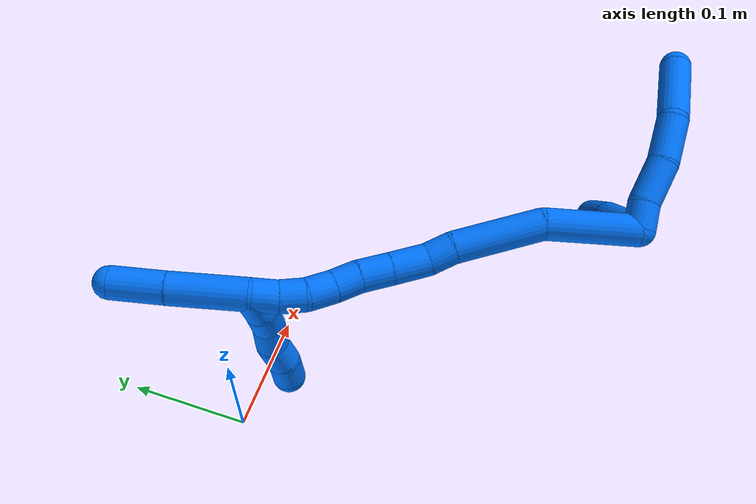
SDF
<sdf version="1.7">
 <world name="default">
  <model name="14">
   <static>0</static>
   <link name="14">
    <collision name="collision-cylinder-e_1_2_8">
     <pose>0.00092 -0.010572 -0.001893 1.748 0.08543 0.102061</pose>
     <geometry><cylinder><radius>0.0125</radius><length>0.02156</length></cylinder></geometry>
     <surface>
      <friction><ode><mu>1.16</mu><mu2>1.16</mu2><slip1>0</slip1><slip2>0</slip2></ode></friction>
      <contact><ode><kp>1e+06</kp><kd>1</kd><max_vel>0</max_vel><min_depth>0.001</min_depth></ode></contact>
     </surface>
    </collision>
    <visual name="visual-cylinder-e_1_2_8">
     <pose>0.00092 -0.010572 -0.001893 1.748 0.08543 0.102061</pose>
     <geometry><cylinder><radius>0.0125</radius><length>0.02156</length></cylinder></geometry>
     <material><ambient>0 0.462745 1 1</ambient></material>
    </visual>
    <collision name="collision-cylinder-e_2_8_9">
     <pose>0.007113 -0.037811 -0.004598 1.61943 0.306088 0.321093</pose>
     <geometry><cylinder><radius>0.0125</radius><length>0.034998</length></cylinder></geometry>
     <surface>
      <friction><ode><mu>1.16</mu><mu2>1.16</mu2><slip1>0</slip1><slip2>0</slip2></ode></friction>
      <contact><ode><kp>1e+06</kp><kd>1</kd><max_vel>0</max_vel><min_depth>0.001</min_depth></ode></contact>
     </surface>
    </collision>
    <visual name="visual-cylinder-e_2_8_9">
     <pose>0.007113 -0.037811 -0.004598 1.61943 0.306088 0.321093</pose>
     <geometry><cylinder><radius>0.0125</radius><length>0.034998</length></cylinder></geometry>
     <material><ambient>0 0.462745 1 1</ambient></material>
    </visual>
    <collision name="collision-cylinder-e_3_9_10">
     <pose>0.014074 -0.07288 -0.005762 1.59 0.091469 0.09324</pose>
     <geometry><cylinder><radius>0.0125</radius><length>0.036969</length></cylinder></geometry>
     <surface>
      <friction><ode><mu>1.16</mu><mu2>1.16</mu2><slip1>0</slip1><slip2>0</slip2></ode></friction>
      <contact><ode><kp>1e+06</kp><kd>1</kd><max_vel>0</max_vel><min_depth>0.001</min_depth></ode></contact>
     </surface>
    </collision>
    <visual name="visual-cylinder-e_3_9_10">
     <pose>0.014074 -0.07288 -0.005762 1.59 0.091469 0.09324</pose>
     <geometry><cylinder><radius>0.0125</radius><length>0.036969</length></cylinder></geometry>
     <material><ambient>0 0.462745 1 1</ambient></material>
    </visual>
    <collision name="collision-cylinder-e_4_10_6">
     <pose>0.012307 -0.118523 0.000475 1.33338 -0.12267 -0.096573</pose>
     <geometry><cylinder><radius>0.0125</radius><length>0.056473</length></cylinder></geometry>
     <surface>
      <friction><ode><mu>1.16</mu><mu2>1.16</mu2><slip1>0</slip1><slip2>0</slip2></ode></friction>
      <contact><ode><kp>1e+06</kp><kd>1</kd><max_vel>0</max_vel><min_depth>0.001</min_depth></ode></contact>
     </surface>
    </collision>
    <visual name="visual-cylinder-e_4_10_6">
     <pose>0.012307 -0.118523 0.000475 1.33338 -0.12267 -0.096573</pose>
     <geometry><cylinder><radius>0.0125</radius><length>0.056473</length></cylinder></geometry>
     <material><ambient>0 0.462745 1 1</ambient></material>
    </visual>
    <collision name="collision-cylinder-e_1_2_11">
     <pose>-0.018683 -0.013705 0.019795 0.605567 -0.659923 -0.213164</pose>
     <geometry><cylinder><radius>0.0125</radius><length>0.06095</length></cylinder></geometry>
     <surface>
      <friction><ode><mu>1.16</mu><mu2>1.16</mu2><slip1>0</slip1><slip2>0</slip2></ode></friction>
      <contact><ode><kp>1e+06</kp><kd>1</kd><max_vel>0</max_vel><min_depth>0.001</min_depth></ode></contact>
     </surface>
    </collision>
    <visual name="visual-cylinder-e_1_2_11">
     <pose>-0.018683 -0.013705 0.019795 0.605567 -0.659923 -0.213164</pose>
     <geometry><cylinder><radius>0.0125</radius><length>0.06095</length></cylinder></geometry>
     <material><ambient>0 0.462745 1 1</ambient></material>
    </visual>
    <collision name="collision-cylinder-e_2_11_5">
     <pose>-0.048805 -0.034432 0.053769 0.459828 -0.625998 -0.151208</pose>
     <geometry><cylinder><radius>0.0125</radius><length>0.03905</length></cylinder></geometry>
     <surface>
      <friction><ode><mu>1.16</mu><mu2>1.16</mu2><slip1>0</slip1><slip2>0</slip2></ode></friction>
      <contact><ode><kp>1e+06</kp><kd>1</kd><max_vel>0</max_vel><min_depth>0.001</min_depth></ode></contact>
     </surface>
    </collision>
    <visual name="visual-cylinder-e_2_11_5">
     <pose>-0.048805 -0.034432 0.053769 0.459828 -0.625998 -0.151208</pose>
     <geometry><cylinder><radius>0.0125</radius><length>0.03905</length></cylinder></geometry>
     <material><ambient>0 0.462745 1 1</ambient></material>
    </visual>
    <collision name="collision-cylinder-e_1_2_12">
     <pose>-0.031399 0.006064 -0.018052 -2.81753 -1.02562 2.57648</pose>
     <geometry><cylinder><radius>0.0125</radius><length>0.073445</length></cylinder></geometry>
     <surface>
      <friction><ode><mu>1.16</mu><mu2>1.16</mu2><slip1>0</slip1><slip2>0</slip2></ode></friction>
      <contact><ode><kp>1e+06</kp><kd>1</kd><max_vel>0</max_vel><min_depth>0.001</min_depth></ode></contact>
     </surface>
    </collision>
    <visual name="visual-cylinder-e_1_2_12">
     <pose>-0.031399 0.006064 -0.018052 -2.81753 -1.02562 2.57648</pose>
     <geometry><cylinder><radius>0.0125</radius><length>0.073445</length></cylinder></geometry>
     <material><ambient>0 0.462745 1 1</ambient></material>
    </visual>
    <collision name="collision-cylinder-e_2_12_13">
     <pose>-0.091172 0.028378 -0.049365 -2.25522 -0.934234 1.63138</pose>
     <geometry><cylinder><radius>0.0125</radius><length>0.07057</length></cylinder></geometry>
     <surface>
      <friction><ode><mu>1.16</mu><mu2>1.16</mu2><slip1>0</slip1><slip2>0</slip2></ode></friction>
      <contact><ode><kp>1e+06</kp><kd>1</kd><max_vel>0</max_vel><min_depth>0.001</min_depth></ode></contact>
     </surface>
    </collision>
    <visual name="visual-cylinder-e_2_12_13">
     <pose>-0.091172 0.028378 -0.049365 -2.25522 -0.934234 1.63138</pose>
     <geometry><cylinder><radius>0.0125</radius><length>0.07057</length></cylinder></geometry>
     <material><ambient>0 0.462745 1 1</ambient></material>
    </visual>
    <collision name="collision-cylinder-e_3_13_14">
     <pose>-0.127511 0.050861 -0.065359 -1.98419 -0.863748 1.22878</pose>
     <geometry><cylinder><radius>0.0125</radius><length>0.020952</length></cylinder></geometry>
     <surface>
      <friction><ode><mu>1.16</mu><mu2>1.16</mu2><slip1>0</slip1><slip2>0</slip2></ode></friction>
      <contact><ode><kp>1e+06</kp><kd>1</kd><max_vel>0</max_vel><min_depth>0.001</min_depth></ode></contact>
     </surface>
    </collision>
    <visual name="visual-cylinder-e_3_13_14">
     <pose>-0.127511 0.050861 -0.065359 -1.98419 -0.863748 1.22878</pose>
     <geometry><cylinder><radius>0.0125</radius><length>0.020952</length></cylinder></geometry>
     <material><ambient>0 0.462745 1 1</ambient></material>
    </visual>
    <collision name="collision-cylinder-e_4_14_15">
     <pose>-0.146058 0.064173 -0.075257 -2.36212 -0.810059 1.61364</pose>
     <geometry><cylinder><radius>0.0125</radius><length>0.029219</length></cylinder></geometry>
     <surface>
      <friction><ode><mu>1.16</mu><mu2>1.16</mu2><slip1>0</slip1><slip2>0</slip2></ode></friction>
      <contact><ode><kp>1e+06</kp><kd>1</kd><max_vel>0</max_vel><min_depth>0.001</min_depth></ode></contact>
     </surface>
    </collision>
    <visual name="visual-cylinder-e_4_14_15">
     <pose>-0.146058 0.064173 -0.075257 -2.36212 -0.810059 1.61364</pose>
     <geometry><cylinder><radius>0.0125</radius><length>0.029219</length></cylinder></geometry>
     <material><ambient>0 0.462745 1 1</ambient></material>
    </visual>
    <collision name="collision-cylinder-e_5_15_16">
     <pose>-0.165451 0.077097 -0.088602 -2.38416 -0.803074 1.63565</pose>
     <geometry><cylinder><radius>0.0125</radius><length>0.024493</length></cylinder></geometry>
     <surface>
      <friction><ode><mu>1.16</mu><mu2>1.16</mu2><slip1>0</slip1><slip2>0</slip2></ode></friction>
      <contact><ode><kp>1e+06</kp><kd>1</kd><max_vel>0</max_vel><min_depth>0.001</min_depth></ode></contact>
     </surface>
    </collision>
    <visual name="visual-cylinder-e_5_15_16">
     <pose>-0.165451 0.077097 -0.088602 -2.38416 -0.803074 1.63565</pose>
     <geometry><cylinder><radius>0.0125</radius><length>0.024493</length></cylinder></geometry>
     <material><ambient>0 0.462745 1 1</ambient></material>
    </visual>
    <collision name="collision-cylinder-e_6_16_17">
     <pose>-0.180831 0.088937 -0.099375 -2.22449 -0.715754 1.29667</pose>
     <geometry><cylinder><radius>0.0125</radius><length>0.020021</length></cylinder></geometry>
     <surface>
      <friction><ode><mu>1.16</mu><mu2>1.16</mu2><slip1>0</slip1><slip2>0</slip2></ode></friction>
      <contact><ode><kp>1e+06</kp><kd>1</kd><max_vel>0</max_vel><min_depth>0.001</min_depth></ode></contact>
     </surface>
    </collision>
    <visual name="visual-cylinder-e_6_16_17">
     <pose>-0.180831 0.088937 -0.099375 -2.22449 -0.715754 1.29667</pose>
     <geometry><cylinder><radius>0.0125</radius><length>0.020021</length></cylinder></geometry>
     <material><ambient>0 0.462745 1 1</ambient></material>
    </visual>
    <collision name="collision-cylinder-e_7_17_18">
     <pose>-0.194261 0.100573 -0.10966 -2.36078 -0.708179 1.46373</pose>
     <geometry><cylinder><radius>0.0125</radius><length>0.021097</length></cylinder></geometry>
     <surface>
      <friction><ode><mu>1.16</mu><mu2>1.16</mu2><slip1>0</slip1><slip2>0</slip2></ode></friction>
      <contact><ode><kp>1e+06</kp><kd>1</kd><max_vel>0</max_vel><min_depth>0.001</min_depth></ode></contact>
     </surface>
    </collision>
    <visual name="visual-cylinder-e_7_17_18">
     <pose>-0.194261 0.100573 -0.10966 -2.36078 -0.708179 1.46373</pose>
     <geometry><cylinder><radius>0.0125</radius><length>0.021097</length></cylinder></geometry>
     <material><ambient>0 0.462745 1 1</ambient></material>
    </visual>
    <collision name="collision-cylinder-e_8_18_19">
     <pose>-0.209244 0.109375 -0.120297 -2.57258 -0.94494 2.10213</pose>
     <geometry><cylinder><radius>0.0125</radius><length>0.020041</length></cylinder></geometry>
     <surface>
      <friction><ode><mu>1.16</mu><mu2>1.16</mu2><slip1>0</slip1><slip2>0</slip2></ode></friction>
      <contact><ode><kp>1e+06</kp><kd>1</kd><max_vel>0</max_vel><min_depth>0.001</min_depth></ode></contact>
     </surface>
    </collision>
    <visual name="visual-cylinder-e_8_18_19">
     <pose>-0.209244 0.109375 -0.120297 -2.57258 -0.94494 2.10213</pose>
     <geometry><cylinder><radius>0.0125</radius><length>0.020041</length></cylinder></geometry>
     <material><ambient>0 0.462745 1 1</ambient></material>
    </visual>
    <collision name="collision-cylinder-e_9_19_1">
     <pose>-0.22504 0.114428 -0.131498 -2.84812 -0.865428 2.52223</pose>
     <geometry><cylinder><radius>0.0125</radius><length>0.020162</length></cylinder></geometry>
     <surface>
      <friction><ode><mu>1.16</mu><mu2>1.16</mu2><slip1>0</slip1><slip2>0</slip2></ode></friction>
      <contact><ode><kp>1e+06</kp><kd>1</kd><max_vel>0</max_vel><min_depth>0.001</min_depth></ode></contact>
     </surface>
    </collision>
    <visual name="visual-cylinder-e_9_19_1">
     <pose>-0.22504 0.114428 -0.131498 -2.84812 -0.865428 2.52223</pose>
     <geometry><cylinder><radius>0.0125</radius><length>0.020162</length></cylinder></geometry>
     <material><ambient>0 0.462745 1 1</ambient></material>
    </visual>
    <collision name="collision-cylinder-e_1_1_20">
     <pose>-0.259052 0.120123 -0.150305 -2.8473 -1.10877 2.67166</pose>
     <geometry><cylinder><radius>0.0125</radius><length>0.058842</length></cylinder></geometry>
     <surface>
      <friction><ode><mu>1.16</mu><mu2>1.16</mu2><slip1>0</slip1><slip2>0</slip2></ode></friction>
      <contact><ode><kp>1e+06</kp><kd>1</kd><max_vel>0</max_vel><min_depth>0.001</min_depth></ode></contact>
     </surface>
    </collision>
    <visual name="visual-cylinder-e_1_1_20">
     <pose>-0.259052 0.120123 -0.150305 -2.8473 -1.10877 2.67166</pose>
     <geometry><cylinder><radius>0.0125</radius><length>0.058842</length></cylinder></geometry>
     <material><ambient>0 0.462745 1 1</ambient></material>
    </visual>
    <collision name="collision-cylinder-e_2_20_4">
     <pose>-0.304154 0.12596 -0.171053 -2.8985 -1.14791 2.76815</pose>
     <geometry><cylinder><radius>0.0125</radius><length>0.041158</length></cylinder></geometry>
     <surface>
      <friction><ode><mu>1.16</mu><mu2>1.16</mu2><slip1>0</slip1><slip2>0</slip2></ode></friction>
      <contact><ode><kp>1e+06</kp><kd>1</kd><max_vel>0</max_vel><min_depth>0.001</min_depth></ode></contact>
     </surface>
    </collision>
    <visual name="visual-cylinder-e_2_20_4">
     <pose>-0.304154 0.12596 -0.171053 -2.8985 -1.14791 2.76815</pose>
     <geometry><cylinder><radius>0.0125</radius><length>0.041158</length></cylinder></geometry>
     <material><ambient>0 0.462745 1 1</ambient></material>
    </visual>
    <collision name="collision-cylinder-e_1_1_21">
     <pose>-0.232637 0.119262 -0.128197 -0.29871 0.007839 -0.00118</pose>
     <geometry><cylinder><radius>0.0125</radius><length>0.02</length></cylinder></geometry>
     <surface>
      <friction><ode><mu>1.16</mu><mu2>1.16</mu2><slip1>0</slip1><slip2>0</slip2></ode></friction>
      <contact><ode><kp>1e+06</kp><kd>1</kd><max_vel>0</max_vel><min_depth>0.001</min_depth></ode></contact>
     </surface>
    </collision>
    <visual name="visual-cylinder-e_1_1_21">
     <pose>-0.232637 0.119262 -0.128197 -0.29871 0.007839 -0.00118</pose>
     <geometry><cylinder><radius>0.0125</radius><length>0.02</length></cylinder></geometry>
     <material><ambient>0 0.462745 1 1</ambient></material>
    </visual>
    <collision name="collision-cylinder-e_2_21_22">
     <pose>-0.234656 0.124308 -0.109092 -0.216837 -0.211215 0.023075</pose>
     <geometry><cylinder><radius>0.0125</radius><length>0.02</length></cylinder></geometry>
     <surface>
      <friction><ode><mu>1.16</mu><mu2>1.16</mu2><slip1>0</slip1><slip2>0</slip2></ode></friction>
      <contact><ode><kp>1e+06</kp><kd>1</kd><max_vel>0</max_vel><min_depth>0.001</min_depth></ode></contact>
     </surface>
    </collision>
    <visual name="visual-cylinder-e_2_21_22">
     <pose>-0.234656 0.124308 -0.109092 -0.216837 -0.211215 0.023075</pose>
     <geometry><cylinder><radius>0.0125</radius><length>0.02</length></cylinder></geometry>
     <material><ambient>0 0.462745 1 1</ambient></material>
    </visual>
    <collision name="collision-cylinder-e_3_22_23">
     <pose>-0.238552 0.131388 -0.091057 -0.530346 -0.18101 0.049281</pose>
     <geometry><cylinder><radius>0.0125</radius><length>0.02</length></cylinder></geometry>
     <surface>
      <friction><ode><mu>1.16</mu><mu2>1.16</mu2><slip1>0</slip1><slip2>0</slip2></ode></friction>
      <contact><ode><kp>1e+06</kp><kd>1</kd><max_vel>0</max_vel><min_depth>0.001</min_depth></ode></contact>
     </surface>
    </collision>
    <visual name="visual-cylinder-e_3_22_23">
     <pose>-0.238552 0.131388 -0.091057 -0.530346 -0.18101 0.049281</pose>
     <geometry><cylinder><radius>0.0125</radius><length>0.02</length></cylinder></geometry>
     <material><ambient>0 0.462745 1 1</ambient></material>
    </visual>
    <collision name="collision-cylinder-e_4_23_24">
     <pose>-0.239755 0.139724 -0.073173 -0.343419 0.059745 -0.010364</pose>
     <geometry><cylinder><radius>0.0125</radius><length>0.02</length></cylinder></geometry>
     <surface>
      <friction><ode><mu>1.16</mu><mu2>1.16</mu2><slip1>0</slip1><slip2>0</slip2></ode></friction>
      <contact><ode><kp>1e+06</kp><kd>1</kd><max_vel>0</max_vel><min_depth>0.001</min_depth></ode></contact>
     </surface>
    </collision>
    <visual name="visual-cylinder-e_4_23_24">
     <pose>-0.239755 0.139724 -0.073173 -0.343419 0.059745 -0.010364</pose>
     <geometry><cylinder><radius>0.0125</radius><length>0.02</length></cylinder></geometry>
     <material><ambient>0 0.462745 1 1</ambient></material>
    </visual>
    <collision name="collision-cylinder-e_5_24_3">
     <pose>-0.241105 0.146716 -0.054662 -0.379202 -0.195908 0.037712</pose>
     <geometry><cylinder><radius>0.0125</radius><length>0.02</length></cylinder></geometry>
     <surface>
      <friction><ode><mu>1.16</mu><mu2>1.16</mu2><slip1>0</slip1><slip2>0</slip2></ode></friction>
      <contact><ode><kp>1e+06</kp><kd>1</kd><max_vel>0</max_vel><min_depth>0.001</min_depth></ode></contact>
     </surface>
    </collision>
    <visual name="visual-cylinder-e_5_24_3">
     <pose>-0.241105 0.146716 -0.054662 -0.379202 -0.195908 0.037712</pose>
     <geometry><cylinder><radius>0.0125</radius><length>0.02</length></cylinder></geometry>
     <material><ambient>0 0.462745 1 1</ambient></material>
    </visual>
    <collision name="collision-sphere-3">
     <pose>-0.243051 0.150347 -0.04555 0 -0 0</pose>
     <geometry><sphere><radius>0.0125</radius></sphere></geometry>
     <surface>
      <friction><ode><mu>1.16</mu><mu2>1.16</mu2><slip1>0</slip1><slip2>0</slip2></ode></friction>
      <contact><ode><kp>1e+06</kp><kd>1</kd><max_vel>0</max_vel><min_depth>0.001</min_depth></ode></contact>
     </surface>
    </collision>
    <visual name="visual-sphere-3">
     <pose>-0.243051 0.150347 -0.04555 0 -0 0</pose>
     <geometry><sphere><radius>0.0125</radius></sphere></geometry>
     <material><ambient>0 0.462745 1 1</ambient></material>
    </visual>
    <collision name="collision-sphere-24">
     <pose>-0.239158 0.143085 -0.063773 0 -0 0</pose>
     <geometry><sphere><radius>0.0125</radius></sphere></geometry>
     <surface>
      <friction><ode><mu>1.16</mu><mu2>1.16</mu2><slip1>0</slip1><slip2>0</slip2></ode></friction>
      <contact><ode><kp>1e+06</kp><kd>1</kd><max_vel>0</max_vel><min_depth>0.001</min_depth></ode></contact>
     </surface>
    </collision>
    <visual name="visual-sphere-24">
     <pose>-0.239158 0.143085 -0.063773 0 -0 0</pose>
     <geometry><sphere><radius>0.0125</radius></sphere></geometry>
     <material><ambient>0 0.462745 1 1</ambient></material>
    </visual>
    <collision name="collision-sphere-23">
     <pose>-0.240352 0.136363 -0.082572 0 -0 0</pose>
     <geometry><sphere><radius>0.0125</radius></sphere></geometry>
     <surface>
      <friction><ode><mu>1.16</mu><mu2>1.16</mu2><slip1>0</slip1><slip2>0</slip2></ode></friction>
      <contact><ode><kp>1e+06</kp><kd>1</kd><max_vel>0</max_vel><min_depth>0.001</min_depth></ode></contact>
     </surface>
    </collision>
    <visual name="visual-sphere-23">
     <pose>-0.240352 0.136363 -0.082572 0 -0 0</pose>
     <geometry><sphere><radius>0.0125</radius></sphere></geometry>
     <material><ambient>0 0.462745 1 1</ambient></material>
    </visual>
    <collision name="collision-sphere-22">
     <pose>-0.236752 0.126412 -0.099543 0 -0 0</pose>
     <geometry><sphere><radius>0.0125</radius></sphere></geometry>
     <surface>
      <friction><ode><mu>1.16</mu><mu2>1.16</mu2><slip1>0</slip1><slip2>0</slip2></ode></friction>
      <contact><ode><kp>1e+06</kp><kd>1</kd><max_vel>0</max_vel><min_depth>0.001</min_depth></ode></contact>
     </surface>
    </collision>
    <visual name="visual-sphere-22">
     <pose>-0.236752 0.126412 -0.099543 0 -0 0</pose>
     <geometry><sphere><radius>0.0125</radius></sphere></geometry>
     <material><ambient>0 0.462745 1 1</ambient></material>
    </visual>
    <collision name="collision-sphere-21">
     <pose>-0.232559 0.122205 -0.11864 0 -0 0</pose>
     <geometry><sphere><radius>0.0125</radius></sphere></geometry>
     <surface>
      <friction><ode><mu>1.16</mu><mu2>1.16</mu2><slip1>0</slip1><slip2>0</slip2></ode></friction>
      <contact><ode><kp>1e+06</kp><kd>1</kd><max_vel>0</max_vel><min_depth>0.001</min_depth></ode></contact>
     </surface>
    </collision>
    <visual name="visual-sphere-21">
     <pose>-0.232559 0.122205 -0.11864 0 -0 0</pose>
     <geometry><sphere><radius>0.0125</radius></sphere></geometry>
     <material><ambient>0 0.462745 1 1</ambient></material>
    </visual>
    <collision name="collision-sphere-4">
     <pose>-0.322921 0.127993 -0.179251 0 -0 0</pose>
     <geometry><sphere><radius>0.0125</radius></sphere></geometry>
     <surface>
      <friction><ode><mu>1.16</mu><mu2>1.16</mu2><slip1>0</slip1><slip2>0</slip2></ode></friction>
      <contact><ode><kp>1e+06</kp><kd>1</kd><max_vel>0</max_vel><min_depth>0.001</min_depth></ode></contact>
     </surface>
    </collision>
    <visual name="visual-sphere-4">
     <pose>-0.322921 0.127993 -0.179251 0 -0 0</pose>
     <geometry><sphere><radius>0.0125</radius></sphere></geometry>
     <material><ambient>0 0.462745 1 1</ambient></material>
    </visual>
    <collision name="collision-sphere-20">
     <pose>-0.285388 0.123927 -0.162856 0 -0 0</pose>
     <geometry><sphere><radius>0.0125</radius></sphere></geometry>
     <surface>
      <friction><ode><mu>1.16</mu><mu2>1.16</mu2><slip1>0</slip1><slip2>0</slip2></ode></friction>
      <contact><ode><kp>1e+06</kp><kd>1</kd><max_vel>0</max_vel><min_depth>0.001</min_depth></ode></contact>
     </surface>
    </collision>
    <visual name="visual-sphere-20">
     <pose>-0.285388 0.123927 -0.162856 0 -0 0</pose>
     <geometry><sphere><radius>0.0125</radius></sphere></geometry>
     <material><ambient>0 0.462745 1 1</ambient></material>
    </visual>
    <collision name="collision-sphere-11">
     <pose>-0.037365 -0.02741 0.03959 0 -0 0</pose>
     <geometry><sphere><radius>0.0125</radius></sphere></geometry>
     <surface>
      <friction><ode><mu>1.16</mu><mu2>1.16</mu2><slip1>0</slip1><slip2>0</slip2></ode></friction>
      <contact><ode><kp>1e+06</kp><kd>1</kd><max_vel>0</max_vel><min_depth>0.001</min_depth></ode></contact>
     </surface>
    </collision>
    <visual name="visual-sphere-11">
     <pose>-0.037365 -0.02741 0.03959 0 -0 0</pose>
     <geometry><sphere><radius>0.0125</radius></sphere></geometry>
     <material><ambient>0 0.462745 1 1</ambient></material>
    </visual>
    <collision name="collision-sphere-6">
     <pose>0.008852 -0.145761 0.007066 0 -0 0</pose>
     <geometry><sphere><radius>0.0125</radius></sphere></geometry>
     <surface>
      <friction><ode><mu>1.16</mu><mu2>1.16</mu2><slip1>0</slip1><slip2>0</slip2></ode></friction>
      <contact><ode><kp>1e+06</kp><kd>1</kd><max_vel>0</max_vel><min_depth>0.001</min_depth></ode></contact>
     </surface>
    </collision>
    <visual name="visual-sphere-6">
     <pose>0.008852 -0.145761 0.007066 0 -0 0</pose>
     <geometry><sphere><radius>0.0125</radius></sphere></geometry>
     <material><ambient>0 0.462745 1 1</ambient></material>
    </visual>
    <collision name="collision-sphere-10">
     <pose>0.015762 -0.091284 -0.006116 0 -0 0</pose>
     <geometry><sphere><radius>0.0125</radius></sphere></geometry>
     <surface>
      <friction><ode><mu>1.16</mu><mu2>1.16</mu2><slip1>0</slip1><slip2>0</slip2></ode></friction>
      <contact><ode><kp>1e+06</kp><kd>1</kd><max_vel>0</max_vel><min_depth>0.001</min_depth></ode></contact>
     </surface>
    </collision>
    <visual name="visual-sphere-10">
     <pose>0.015762 -0.091284 -0.006116 0 -0 0</pose>
     <geometry><sphere><radius>0.0125</radius></sphere></geometry>
     <material><ambient>0 0.462745 1 1</ambient></material>
    </visual>
    <collision name="collision-sphere-9">
     <pose>0.012386 -0.054477 -0.005409 0 -0 0</pose>
     <geometry><sphere><radius>0.0125</radius></sphere></geometry>
     <surface>
      <friction><ode><mu>1.16</mu><mu2>1.16</mu2><slip1>0</slip1><slip2>0</slip2></ode></friction>
      <contact><ode><kp>1e+06</kp><kd>1</kd><max_vel>0</max_vel><min_depth>0.001</min_depth></ode></contact>
     </surface>
    </collision>
    <visual name="visual-sphere-9">
     <pose>0.012386 -0.054477 -0.005409 0 -0 0</pose>
     <geometry><sphere><radius>0.0125</radius></sphere></geometry>
     <material><ambient>0 0.462745 1 1</ambient></material>
    </visual>
    <collision name="collision-sphere-2">
     <geometry><sphere><radius>0.0125</radius></sphere></geometry>
     <surface>
      <friction><ode><mu>1.16</mu><mu2>1.16</mu2><slip1>0</slip1><slip2>0</slip2></ode></friction>
      <contact><ode><kp>1e+06</kp><kd>1</kd><max_vel>0</max_vel><min_depth>0.001</min_depth></ode></contact>
     </surface>
    </collision>
    <visual name="visual-sphere-2">
     <geometry><sphere><radius>0.0125</radius></sphere></geometry>
     <material><ambient>0 0.462745 1 1</ambient></material>
    </visual>
    <collision name="collision-sphere-19">
     <pose>-0.217365 0.112538 -0.125242 0 -0 0</pose>
     <geometry><sphere><radius>0.0125</radius></sphere></geometry>
     <surface>
      <friction><ode><mu>1.16</mu><mu2>1.16</mu2><slip1>0</slip1><slip2>0</slip2></ode></friction>
      <contact><ode><kp>1e+06</kp><kd>1</kd><max_vel>0</max_vel><min_depth>0.001</min_depth></ode></contact>
     </surface>
    </collision>
    <visual name="visual-sphere-19">
     <pose>-0.217365 0.112538 -0.125242 0 -0 0</pose>
     <geometry><sphere><radius>0.0125</radius></sphere></geometry>
     <material><ambient>0 0.462745 1 1</ambient></material>
    </visual>
    <collision name="collision-sphere-8">
     <pose>0.00184 -0.021145 -0.003787 0 -0 0</pose>
     <geometry><sphere><radius>0.0125</radius></sphere></geometry>
     <surface>
      <friction><ode><mu>1.16</mu><mu2>1.16</mu2><slip1>0</slip1><slip2>0</slip2></ode></friction>
      <contact><ode><kp>1e+06</kp><kd>1</kd><max_vel>0</max_vel><min_depth>0.001</min_depth></ode></contact>
     </surface>
    </collision>
    <visual name="visual-sphere-8">
     <pose>0.00184 -0.021145 -0.003787 0 -0 0</pose>
     <geometry><sphere><radius>0.0125</radius></sphere></geometry>
     <material><ambient>0 0.462745 1 1</ambient></material>
    </visual>
    <collision name="collision-sphere-5">
     <pose>-0.060245 -0.041454 0.067949 0 -0 0</pose>
     <geometry><sphere><radius>0.0125</radius></sphere></geometry>
     <surface>
      <friction><ode><mu>1.16</mu><mu2>1.16</mu2><slip1>0</slip1><slip2>0</slip2></ode></friction>
      <contact><ode><kp>1e+06</kp><kd>1</kd><max_vel>0</max_vel><min_depth>0.001</min_depth></ode></contact>
     </surface>
    </collision>
    <visual name="visual-sphere-5">
     <pose>-0.060245 -0.041454 0.067949 0 -0 0</pose>
     <geometry><sphere><radius>0.0125</radius></sphere></geometry>
     <material><ambient>0 0.462745 1 1</ambient></material>
    </visual>
    <collision name="collision-sphere-12">
     <pose>-0.062798 0.012128 -0.036104 0 -0 0</pose>
     <geometry><sphere><radius>0.0125</radius></sphere></geometry>
     <surface>
      <friction><ode><mu>1.16</mu><mu2>1.16</mu2><slip1>0</slip1><slip2>0</slip2></ode></friction>
      <contact><ode><kp>1e+06</kp><kd>1</kd><max_vel>0</max_vel><min_depth>0.001</min_depth></ode></contact>
     </surface>
    </collision>
    <visual name="visual-sphere-12">
     <pose>-0.062798 0.012128 -0.036104 0 -0 0</pose>
     <geometry><sphere><radius>0.0125</radius></sphere></geometry>
     <material><ambient>0 0.462745 1 1</ambient></material>
    </visual>
    <collision name="collision-sphere-13">
     <pose>-0.119546 0.044629 -0.062625 0 -0 0</pose>
     <geometry><sphere><radius>0.0125</radius></sphere></geometry>
     <surface>
      <friction><ode><mu>1.16</mu><mu2>1.16</mu2><slip1>0</slip1><slip2>0</slip2></ode></friction>
      <contact><ode><kp>1e+06</kp><kd>1</kd><max_vel>0</max_vel><min_depth>0.001</min_depth></ode></contact>
     </surface>
    </collision>
    <visual name="visual-sphere-13">
     <pose>-0.119546 0.044629 -0.062625 0 -0 0</pose>
     <geometry><sphere><radius>0.0125</radius></sphere></geometry>
     <material><ambient>0 0.462745 1 1</ambient></material>
    </visual>
    <collision name="collision-sphere-14">
     <pose>-0.135475 0.057093 -0.068093 0 -0 0</pose>
     <geometry><sphere><radius>0.0125</radius></sphere></geometry>
     <surface>
      <friction><ode><mu>1.16</mu><mu2>1.16</mu2><slip1>0</slip1><slip2>0</slip2></ode></friction>
      <contact><ode><kp>1e+06</kp><kd>1</kd><max_vel>0</max_vel><min_depth>0.001</min_depth></ode></contact>
     </surface>
    </collision>
    <visual name="visual-sphere-14">
     <pose>-0.135475 0.057093 -0.068093 0 -0 0</pose>
     <geometry><sphere><radius>0.0125</radius></sphere></geometry>
     <material><ambient>0 0.462745 1 1</ambient></material>
    </visual>
    <collision name="collision-sphere-15">
     <pose>-0.15664 0.071253 -0.082422 0 -0 0</pose>
     <geometry><sphere><radius>0.0125</radius></sphere></geometry>
     <surface>
      <friction><ode><mu>1.16</mu><mu2>1.16</mu2><slip1>0</slip1><slip2>0</slip2></ode></friction>
      <contact><ode><kp>1e+06</kp><kd>1</kd><max_vel>0</max_vel><min_depth>0.001</min_depth></ode></contact>
     </surface>
    </collision>
    <visual name="visual-sphere-15">
     <pose>-0.15664 0.071253 -0.082422 0 -0 0</pose>
     <geometry><sphere><radius>0.0125</radius></sphere></geometry>
     <material><ambient>0 0.462745 1 1</ambient></material>
    </visual>
    <collision name="collision-sphere-16">
     <pose>-0.174262 0.08294 -0.094781 0 -0 0</pose>
     <geometry><sphere><radius>0.0125</radius></sphere></geometry>
     <surface>
      <friction><ode><mu>1.16</mu><mu2>1.16</mu2><slip1>0</slip1><slip2>0</slip2></ode></friction>
      <contact><ode><kp>1e+06</kp><kd>1</kd><max_vel>0</max_vel><min_depth>0.001</min_depth></ode></contact>
     </surface>
    </collision>
    <visual name="visual-sphere-16">
     <pose>-0.174262 0.08294 -0.094781 0 -0 0</pose>
     <geometry><sphere><radius>0.0125</radius></sphere></geometry>
     <material><ambient>0 0.462745 1 1</ambient></material>
    </visual>
    <collision name="collision-sphere-17">
     <pose>-0.187399 0.094933 -0.103969 0 -0 0</pose>
     <geometry><sphere><radius>0.0125</radius></sphere></geometry>
     <surface>
      <friction><ode><mu>1.16</mu><mu2>1.16</mu2><slip1>0</slip1><slip2>0</slip2></ode></friction>
      <contact><ode><kp>1e+06</kp><kd>1</kd><max_vel>0</max_vel><min_depth>0.001</min_depth></ode></contact>
     </surface>
    </collision>
    <visual name="visual-sphere-17">
     <pose>-0.187399 0.094933 -0.103969 0 -0 0</pose>
     <geometry><sphere><radius>0.0125</radius></sphere></geometry>
     <material><ambient>0 0.462745 1 1</ambient></material>
    </visual>
    <collision name="collision-sphere-18">
     <pose>-0.201122 0.106212 -0.115351 0 -0 0</pose>
     <geometry><sphere><radius>0.0125</radius></sphere></geometry>
     <surface>
      <friction><ode><mu>1.16</mu><mu2>1.16</mu2><slip1>0</slip1><slip2>0</slip2></ode></friction>
      <contact><ode><kp>1e+06</kp><kd>1</kd><max_vel>0</max_vel><min_depth>0.001</min_depth></ode></contact>
     </surface>
    </collision>
    <visual name="visual-sphere-18">
     <pose>-0.201122 0.106212 -0.115351 0 -0 0</pose>
     <geometry><sphere><radius>0.0125</radius></sphere></geometry>
     <material><ambient>0 0.462745 1 1</ambient></material>
    </visual>
    <collision name="collision-sphere-1">
     <pose>-0.232716 0.116319 -0.137754 0 -0 0</pose>
     <geometry><sphere><radius>0.0125</radius></sphere></geometry>
     <surface>
      <friction><ode><mu>1.16</mu><mu2>1.16</mu2><slip1>0</slip1><slip2>0</slip2></ode></friction>
      <contact><ode><kp>1e+06</kp><kd>1</kd><max_vel>0</max_vel><min_depth>0.001</min_depth></ode></contact>
     </surface>
    </collision>
    <visual name="visual-sphere-1">
     <pose>-0.232716 0.116319 -0.137754 0 -0 0</pose>
     <geometry><sphere><radius>0.0125</radius></sphere></geometry>
     <material><ambient>0 0.462745 1 1</ambient></material>
    </visual>
    <inertial>
     <pose>-0.118983 0.037387 -0.056004 0 -0 0</pose>
     <mass>0.75</mass>
     <inertia>
      <ixx>3.8e-05</ixx>
      <ixy>0</ixy>
      <ixz>0</ixz>
      <iyy>0.000161</iyy>
      <iyz>0</iyz>
      <izz>0.000115</izz>
     </inertia>
    </inertial>
   </link>
   <pose>0.175199 -0.270144 0.173511 -2.87445 -0.358305 -1.54494</pose>
  </model>
 </world>
</sdf>
